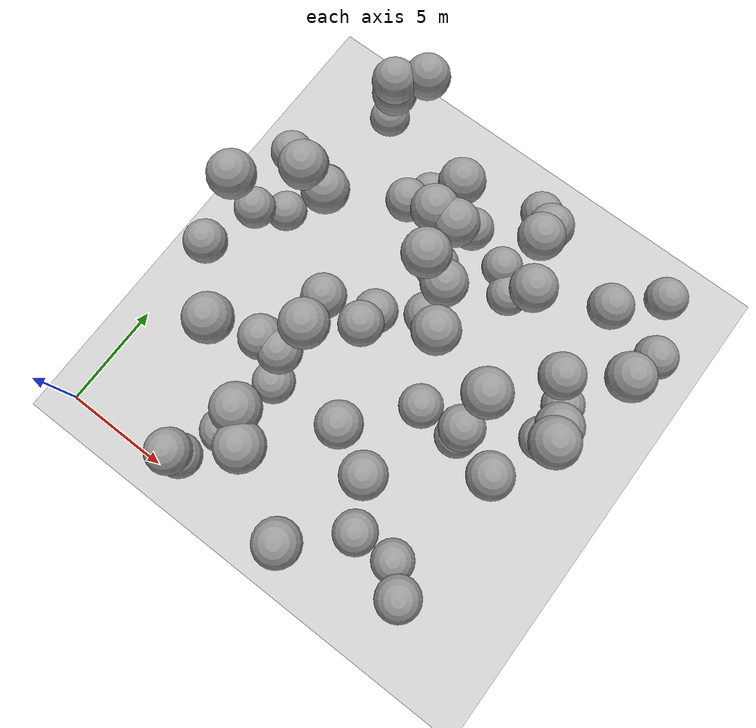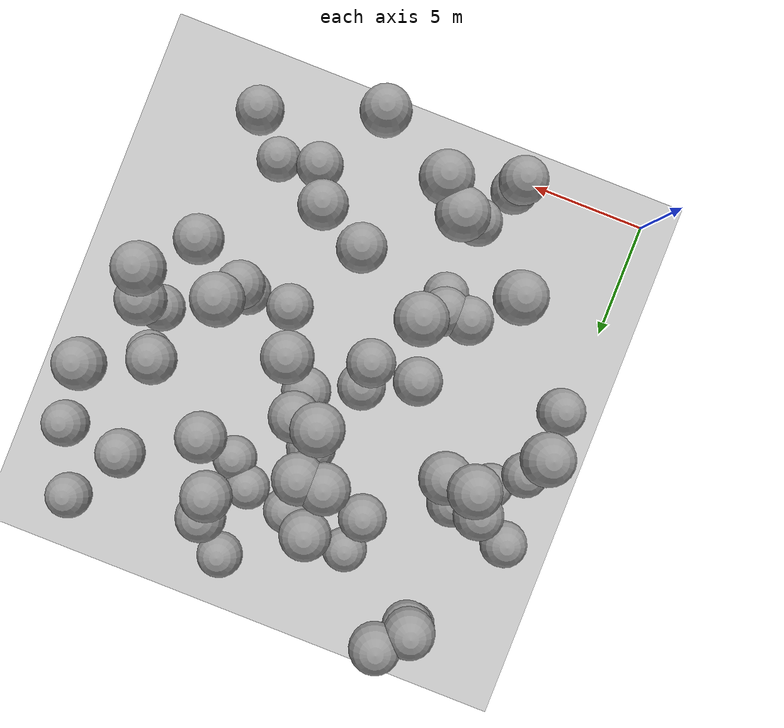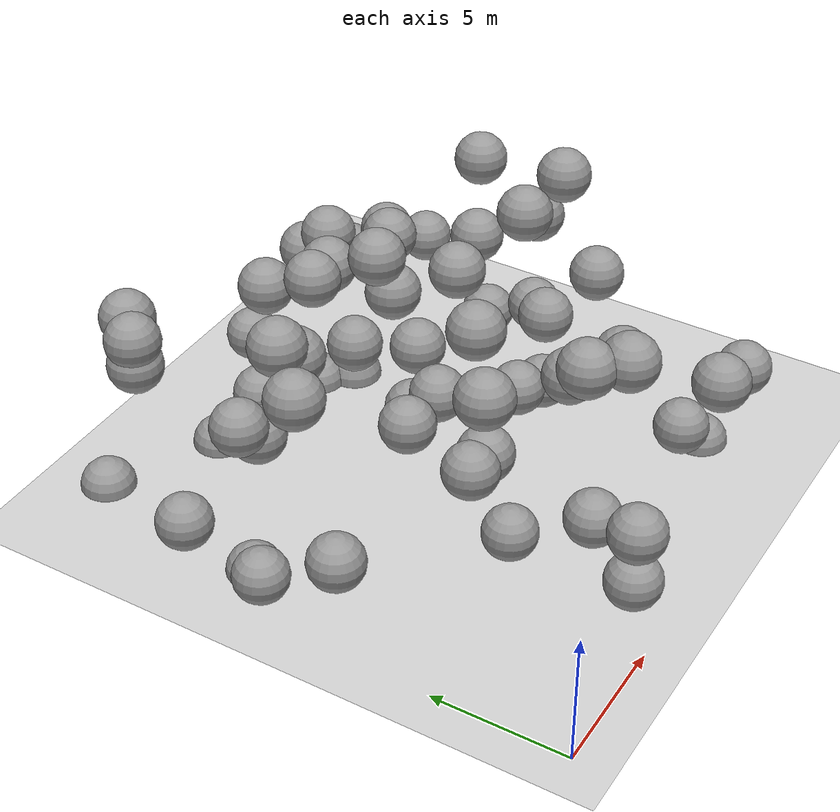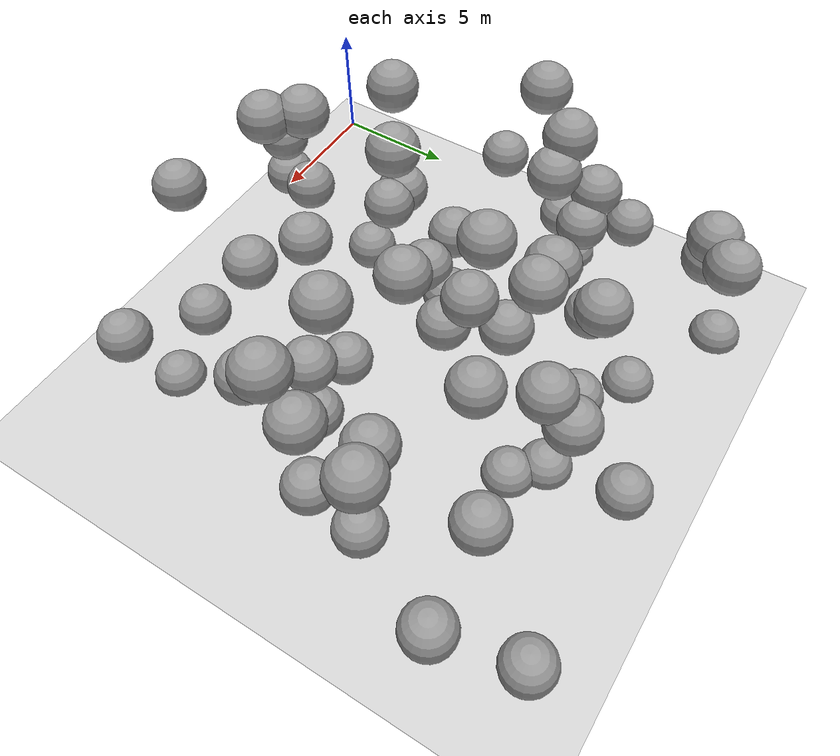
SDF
<sdf version="1.7">
 <world name="default">
  <model name="ground_plane">
   <static>1</static>
   <link name="link">
    <collision name="collision">
     <geometry><plane><normal>0 0 1</normal><size>100 100</size></plane></geometry>
     <surface>
      <contact><collide_bitmask>65535</collide_bitmask></contact>
      <friction><ode><mu>100</mu><mu2>50</mu2></ode></friction>
     </surface>
    </collision>
    <visual name="visual">
     <cast_shadows>0</cast_shadows>
     <geometry><plane><normal>0 0 1</normal><size>100 100</size></plane></geometry>
     <material>
      <script><uri>file://media/materials/scripts/gazebo.material</uri><name>Gazebo/Grey</name></script>
     </material>
    </visual>
   </link>
  </model>
  <model name="sphere_2">
   <static>1</static>
   <pose>13 16 0 0 0 0</pose>
   <link name="link">
    <inertial>
     <mass>418.87902047863906</mass>
     <inertia>
      <ixx>167.55160819145564</ixx>
      <iyy>167.55160819145564</iyy>
      <izz>167.55160819145564</izz>
      <ixy>0</ixy>
      <ixz>0</ixz>
      <iyz>0</iyz>
     </inertia>
    </inertial>
    <collision name="collision"><geometry><sphere><radius>1.0</radius></sphere></geometry></collision>
    <visual name="visual">
     <geometry><sphere><radius>1.0</radius></sphere></geometry>
     <material>
      <script><uri>file://media/materials/scripts/gazebo.material</uri><name>Gazebo/Grey</name></script>
     </material>
    </visual>
   </link>
  </model>
  <model name="sphere_6">
   <static>1</static>
   <pose>13 5 5 0 0 0</pose>
   <link name="link">
    <inertial>
     <mass>418.87902047863906</mass>
     <inertia>
      <ixx>167.55160819145564</ixx>
      <iyy>167.55160819145564</iyy>
      <izz>167.55160819145564</izz>
      <ixy>0</ixy>
      <ixz>0</ixz>
      <iyz>0</iyz>
     </inertia>
    </inertial>
    <collision name="collision"><geometry><sphere><radius>1.0</radius></sphere></geometry></collision>
    <visual name="visual">
     <geometry><sphere><radius>1.0</radius></sphere></geometry>
     <material>
      <script><uri>file://media/materials/scripts/gazebo.material</uri><name>Gazebo/Grey</name></script>
     </material>
    </visual>
   </link>
  </model>
  <model name="sphere_11">
   <static>1</static>
   <pose>5 6 8 0 0 0</pose>
   <link name="link">
    <inertial>
     <mass>418.87902047863906</mass>
     <inertia>
      <ixx>167.55160819145564</ixx>
      <iyy>167.55160819145564</iyy>
      <izz>167.55160819145564</izz>
      <ixy>0</ixy>
      <ixz>0</ixz>
      <iyz>0</iyz>
     </inertia>
    </inertial>
    <collision name="collision"><geometry><sphere><radius>1.0</radius></sphere></geometry></collision>
    <visual name="visual">
     <geometry><sphere><radius>1.0</radius></sphere></geometry>
     <material>
      <script><uri>file://media/materials/scripts/gazebo.material</uri><name>Gazebo/Grey</name></script>
     </material>
    </visual>
   </link>
  </model>
  <model name="sphere_13">
   <static>1</static>
   <pose>1 9 3 0 0 0</pose>
   <link name="link">
    <inertial>
     <mass>418.87902047863906</mass>
     <inertia>
      <ixx>167.55160819145564</ixx>
      <iyy>167.55160819145564</iyy>
      <izz>167.55160819145564</izz>
      <ixy>0</ixy>
      <ixz>0</ixz>
      <iyz>0</iyz>
     </inertia>
    </inertial>
    <collision name="collision"><geometry><sphere><radius>1.0</radius></sphere></geometry></collision>
    <visual name="visual">
     <geometry><sphere><radius>1.0</radius></sphere></geometry>
     <material>
      <script><uri>file://media/materials/scripts/gazebo.material</uri><name>Gazebo/Grey</name></script>
     </material>
    </visual>
   </link>
  </model>
  <model name="sphere_16">
   <static>1</static>
   <pose>11 12 4 0 0 0</pose>
   <link name="link">
    <inertial>
     <mass>418.87902047863906</mass>
     <inertia>
      <ixx>167.55160819145564</ixx>
      <iyy>167.55160819145564</iyy>
      <izz>167.55160819145564</izz>
      <ixy>0</ixy>
      <ixz>0</ixz>
      <iyz>0</iyz>
     </inertia>
    </inertial>
    <collision name="collision"><geometry><sphere><radius>1.0</radius></sphere></geometry></collision>
    <visual name="visual">
     <geometry><sphere><radius>1.0</radius></sphere></geometry>
     <material>
      <script><uri>file://media/materials/scripts/gazebo.material</uri><name>Gazebo/Grey</name></script>
     </material>
    </visual>
   </link>
  </model>
  <model name="sphere_18">
   <static>1</static>
   <pose>16 3 0 0 0 0</pose>
   <link name="link">
    <inertial>
     <mass>418.87902047863906</mass>
     <inertia>
      <ixx>167.55160819145564</ixx>
      <iyy>167.55160819145564</iyy>
      <izz>167.55160819145564</izz>
      <ixy>0</ixy>
      <ixz>0</ixz>
      <iyz>0</iyz>
     </inertia>
    </inertial>
    <collision name="collision"><geometry><sphere><radius>1.0</radius></sphere></geometry></collision>
    <visual name="visual">
     <geometry><sphere><radius>1.0</radius></sphere></geometry>
     <material>
      <script><uri>file://media/materials/scripts/gazebo.material</uri><name>Gazebo/Grey</name></script>
     </material>
    </visual>
   </link>
  </model>
  <model name="sphere_30">
   <static>1</static>
   <pose>15 9 4 0 0 0</pose>
   <link name="link">
    <inertial>
     <mass>418.87902047863906</mass>
     <inertia>
      <ixx>167.55160819145564</ixx>
      <iyy>167.55160819145564</iyy>
      <izz>167.55160819145564</izz>
      <ixy>0</ixy>
      <ixz>0</ixz>
      <iyz>0</iyz>
     </inertia>
    </inertial>
    <collision name="collision"><geometry><sphere><radius>1.0</radius></sphere></geometry></collision>
    <visual name="visual">
     <geometry><sphere><radius>1.0</radius></sphere></geometry>
     <material>
      <script><uri>file://media/materials/scripts/gazebo.material</uri><name>Gazebo/Grey</name></script>
     </material>
    </visual>
   </link>
  </model>
  <model name="sphere_31">
   <static>1</static>
   <pose>8 4 8 0 0 0</pose>
   <link name="link">
    <inertial>
     <mass>418.87902047863906</mass>
     <inertia>
      <ixx>167.55160819145564</ixx>
      <iyy>167.55160819145564</iyy>
      <izz>167.55160819145564</izz>
      <ixy>0</ixy>
      <ixz>0</ixz>
      <iyz>0</iyz>
     </inertia>
    </inertial>
    <collision name="collision"><geometry><sphere><radius>1.0</radius></sphere></geometry></collision>
    <visual name="visual">
     <geometry><sphere><radius>1.0</radius></sphere></geometry>
     <material>
      <script><uri>file://media/materials/scripts/gazebo.material</uri><name>Gazebo/Grey</name></script>
     </material>
    </visual>
   </link>
  </model>
  <model name="sphere_37">
   <static>1</static>
   <pose>4 19 6 0 0 0</pose>
   <link name="link">
    <inertial>
     <mass>418.87902047863906</mass>
     <inertia>
      <ixx>167.55160819145564</ixx>
      <iyy>167.55160819145564</iyy>
      <izz>167.55160819145564</izz>
      <ixy>0</ixy>
      <ixz>0</ixz>
      <iyz>0</iyz>
     </inertia>
    </inertial>
    <collision name="collision"><geometry><sphere><radius>1.0</radius></sphere></geometry></collision>
    <visual name="visual">
     <geometry><sphere><radius>1.0</radius></sphere></geometry>
     <material>
      <script><uri>file://media/materials/scripts/gazebo.material</uri><name>Gazebo/Grey</name></script>
     </material>
    </visual>
   </link>
  </model>
  <model name="sphere_40">
   <static>1</static>
   <pose>13 18 5 0 0 0</pose>
   <link name="link">
    <inertial>
     <mass>418.87902047863906</mass>
     <inertia>
      <ixx>167.55160819145564</ixx>
      <iyy>167.55160819145564</iyy>
      <izz>167.55160819145564</izz>
      <ixy>0</ixy>
      <ixz>0</ixz>
      <iyz>0</iyz>
     </inertia>
    </inertial>
    <collision name="collision"><geometry><sphere><radius>1.0</radius></sphere></geometry></collision>
    <visual name="visual">
     <geometry><sphere><radius>1.0</radius></sphere></geometry>
     <material>
      <script><uri>file://media/materials/scripts/gazebo.material</uri><name>Gazebo/Grey</name></script>
     </material>
    </visual>
   </link>
  </model>
  <model name="sphere_49">
   <static>1</static>
   <pose>3 14 5 0 0 0</pose>
   <link name="link">
    <inertial>
     <mass>418.87902047863906</mass>
     <inertia>
      <ixx>167.55160819145564</ixx>
      <iyy>167.55160819145564</iyy>
      <izz>167.55160819145564</izz>
      <ixy>0</ixy>
      <ixz>0</ixz>
      <iyz>0</iyz>
     </inertia>
    </inertial>
    <collision name="collision"><geometry><sphere><radius>1.0</radius></sphere></geometry></collision>
    <visual name="visual">
     <geometry><sphere><radius>1.0</radius></sphere></geometry>
     <material>
      <script><uri>file://media/materials/scripts/gazebo.material</uri><name>Gazebo/Grey</name></script>
     </material>
    </visual>
   </link>
  </model>
  <model name="sphere_68">
   <static>1</static>
   <pose>18 13 1 0 0 0</pose>
   <link name="link">
    <inertial>
     <mass>418.87902047863906</mass>
     <inertia>
      <ixx>167.55160819145564</ixx>
      <iyy>167.55160819145564</iyy>
      <izz>167.55160819145564</izz>
      <ixy>0</ixy>
      <ixz>0</ixz>
      <iyz>0</iyz>
     </inertia>
    </inertial>
    <collision name="collision"><geometry><sphere><radius>1.0</radius></sphere></geometry></collision>
    <visual name="visual">
     <geometry><sphere><radius>1.0</radius></sphere></geometry>
     <material>
      <script><uri>file://media/materials/scripts/gazebo.material</uri><name>Gazebo/Grey</name></script>
     </material>
    </visual>
   </link>
  </model>
  <model name="sphere_74">
   <static>1</static>
   <pose>14 3 2 0 0 0</pose>
   <link name="link">
    <inertial>
     <mass>418.87902047863906</mass>
     <inertia>
      <ixx>167.55160819145564</ixx>
      <iyy>167.55160819145564</iyy>
      <izz>167.55160819145564</izz>
      <ixy>0</ixy>
      <ixz>0</ixz>
      <iyz>0</iyz>
     </inertia>
    </inertial>
    <collision name="collision"><geometry><sphere><radius>1.0</radius></sphere></geometry></collision>
    <visual name="visual">
     <geometry><sphere><radius>1.0</radius></sphere></geometry>
     <material>
      <script><uri>file://media/materials/scripts/gazebo.material</uri><name>Gazebo/Grey</name></script>
     </material>
    </visual>
   </link>
  </model>
  <model name="sphere_80">
   <static>1</static>
   <pose>4 19 5 0 0 0</pose>
   <link name="link">
    <inertial>
     <mass>418.87902047863906</mass>
     <inertia>
      <ixx>167.55160819145564</ixx>
      <iyy>167.55160819145564</iyy>
      <izz>167.55160819145564</izz>
      <ixy>0</ixy>
      <ixz>0</ixz>
      <iyz>0</iyz>
     </inertia>
    </inertial>
    <collision name="collision"><geometry><sphere><radius>1.0</radius></sphere></geometry></collision>
    <visual name="visual">
     <geometry><sphere><radius>1.0</radius></sphere></geometry>
     <material>
      <script><uri>file://media/materials/scripts/gazebo.material</uri><name>Gazebo/Grey</name></script>
     </material>
    </visual>
   </link>
  </model>
  <model name="sphere_82">
   <static>1</static>
   <pose>19 14 7 0 0 0</pose>
   <link name="link">
    <inertial>
     <mass>418.87902047863906</mass>
     <inertia>
      <ixx>167.55160819145564</ixx>
      <iyy>167.55160819145564</iyy>
      <izz>167.55160819145564</izz>
      <ixy>0</ixy>
      <ixz>0</ixz>
      <iyz>0</iyz>
     </inertia>
    </inertial>
    <collision name="collision"><geometry><sphere><radius>1.0</radius></sphere></geometry></collision>
    <visual name="visual">
     <geometry><sphere><radius>1.0</radius></sphere></geometry>
     <material>
      <script><uri>file://media/materials/scripts/gazebo.material</uri><name>Gazebo/Grey</name></script>
     </material>
    </visual>
   </link>
  </model>
  <model name="sphere_86">
   <static>1</static>
   <pose>6 1 2 0 0 0</pose>
   <link name="link">
    <inertial>
     <mass>418.87902047863906</mass>
     <inertia>
      <ixx>167.55160819145564</ixx>
      <iyy>167.55160819145564</iyy>
      <izz>167.55160819145564</izz>
      <ixy>0</ixy>
      <ixz>0</ixz>
      <iyz>0</iyz>
     </inertia>
    </inertial>
    <collision name="collision"><geometry><sphere><radius>1.0</radius></sphere></geometry></collision>
    <visual name="visual">
     <geometry><sphere><radius>1.0</radius></sphere></geometry>
     <material>
      <script><uri>file://media/materials/scripts/gazebo.material</uri><name>Gazebo/Grey</name></script>
     </material>
    </visual>
   </link>
  </model>
  <model name="sphere_87">
   <static>1</static>
   <pose>20 17 2 0 0 0</pose>
   <link name="link">
    <inertial>
     <mass>418.87902047863906</mass>
     <inertia>
      <ixx>167.55160819145564</ixx>
      <iyy>167.55160819145564</iyy>
      <izz>167.55160819145564</izz>
      <ixy>0</ixy>
      <ixz>0</ixz>
      <iyz>0</iyz>
     </inertia>
    </inertial>
    <collision name="collision"><geometry><sphere><radius>1.0</radius></sphere></geometry></collision>
    <visual name="visual">
     <geometry><sphere><radius>1.0</radius></sphere></geometry>
     <material>
      <script><uri>file://media/materials/scripts/gazebo.material</uri><name>Gazebo/Grey</name></script>
     </material>
    </visual>
   </link>
  </model>
  <model name="sphere_90">
   <static>1</static>
   <pose>17 17 4 0 0 0</pose>
   <link name="link">
    <inertial>
     <mass>418.87902047863906</mass>
     <inertia>
      <ixx>167.55160819145564</ixx>
      <iyy>167.55160819145564</iyy>
      <izz>167.55160819145564</izz>
      <ixy>0</ixy>
      <ixz>0</ixz>
      <iyz>0</iyz>
     </inertia>
    </inertial>
    <collision name="collision"><geometry><sphere><radius>1.0</radius></sphere></geometry></collision>
    <visual name="visual">
     <geometry><sphere><radius>1.0</radius></sphere></geometry>
     <material>
      <script><uri>file://media/materials/scripts/gazebo.material</uri><name>Gazebo/Grey</name></script>
     </material>
    </visual>
   </link>
  </model>
  <model name="sphere_91">
   <static>1</static>
   <pose>12 1 6 0 0 0</pose>
   <link name="link">
    <inertial>
     <mass>418.87902047863906</mass>
     <inertia>
      <ixx>167.55160819145564</ixx>
      <iyy>167.55160819145564</iyy>
      <izz>167.55160819145564</izz>
      <ixy>0</ixy>
      <ixz>0</ixz>
      <iyz>0</iyz>
     </inertia>
    </inertial>
    <collision name="collision"><geometry><sphere><radius>1.0</radius></sphere></geometry></collision>
    <visual name="visual">
     <geometry><sphere><radius>1.0</radius></sphere></geometry>
     <material>
      <script><uri>file://media/materials/scripts/gazebo.material</uri><name>Gazebo/Grey</name></script>
     </material>
    </visual>
   </link>
  </model>
  <model name="sphere_101">
   <static>1</static>
   <pose>9 17 6 0 0 0</pose>
   <link name="link">
    <inertial>
     <mass>418.87902047863906</mass>
     <inertia>
      <ixx>167.55160819145564</ixx>
      <iyy>167.55160819145564</iyy>
      <izz>167.55160819145564</izz>
      <ixy>0</ixy>
      <ixz>0</ixz>
      <iyz>0</iyz>
     </inertia>
    </inertial>
    <collision name="collision"><geometry><sphere><radius>1.0</radius></sphere></geometry></collision>
    <visual name="visual">
     <geometry><sphere><radius>1.0</radius></sphere></geometry>
     <material>
      <script><uri>file://media/materials/scripts/gazebo.material</uri><name>Gazebo/Grey</name></script>
     </material>
    </visual>
   </link>
  </model>
  <model name="sphere_102">
   <static>1</static>
   <pose>12 20 1 0 0 0</pose>
   <link name="link">
    <inertial>
     <mass>418.87902047863906</mass>
     <inertia>
      <ixx>167.55160819145564</ixx>
      <iyy>167.55160819145564</iyy>
      <izz>167.55160819145564</izz>
      <ixy>0</ixy>
      <ixz>0</ixz>
      <iyz>0</iyz>
     </inertia>
    </inertial>
    <collision name="collision"><geometry><sphere><radius>1.0</radius></sphere></geometry></collision>
    <visual name="visual">
     <geometry><sphere><radius>1.0</radius></sphere></geometry>
     <material>
      <script><uri>file://media/materials/scripts/gazebo.material</uri><name>Gazebo/Grey</name></script>
     </material>
    </visual>
   </link>
  </model>
  <model name="sphere_105">
   <static>1</static>
   <pose>5 13 7 0 0 0</pose>
   <link name="link">
    <inertial>
     <mass>418.87902047863906</mass>
     <inertia>
      <ixx>167.55160819145564</ixx>
      <iyy>167.55160819145564</iyy>
      <izz>167.55160819145564</izz>
      <ixy>0</ixy>
      <ixz>0</ixz>
      <iyz>0</iyz>
     </inertia>
    </inertial>
    <collision name="collision"><geometry><sphere><radius>1.0</radius></sphere></geometry></collision>
    <visual name="visual">
     <geometry><sphere><radius>1.0</radius></sphere></geometry>
     <material>
      <script><uri>file://media/materials/scripts/gazebo.material</uri><name>Gazebo/Grey</name></script>
     </material>
    </visual>
   </link>
  </model>
  <model name="sphere_108">
   <static>1</static>
   <pose>7 10 4 0 0 0</pose>
   <link name="link">
    <inertial>
     <mass>418.87902047863906</mass>
     <inertia>
      <ixx>167.55160819145564</ixx>
      <iyy>167.55160819145564</iyy>
      <izz>167.55160819145564</izz>
      <ixy>0</ixy>
      <ixz>0</ixz>
      <iyz>0</iyz>
     </inertia>
    </inertial>
    <collision name="collision"><geometry><sphere><radius>1.0</radius></sphere></geometry></collision>
    <visual name="visual">
     <geometry><sphere><radius>1.0</radius></sphere></geometry>
     <material>
      <script><uri>file://media/materials/scripts/gazebo.material</uri><name>Gazebo/Grey</name></script>
     </material>
    </visual>
   </link>
  </model>
  <model name="sphere_109">
   <static>1</static>
   <pose>17 13 5 0 0 0</pose>
   <link name="link">
    <inertial>
     <mass>418.87902047863906</mass>
     <inertia>
      <ixx>167.55160819145564</ixx>
      <iyy>167.55160819145564</iyy>
      <izz>167.55160819145564</izz>
      <ixy>0</ixy>
      <ixz>0</ixz>
      <iyz>0</iyz>
     </inertia>
    </inertial>
    <collision name="collision"><geometry><sphere><radius>1.0</radius></sphere></geometry></collision>
    <visual name="visual">
     <geometry><sphere><radius>1.0</radius></sphere></geometry>
     <material>
      <script><uri>file://media/materials/scripts/gazebo.material</uri><name>Gazebo/Grey</name></script>
     </material>
    </visual>
   </link>
  </model>
  <model name="sphere_110">
   <static>1</static>
   <pose>4 13 8 0 0 0</pose>
   <link name="link">
    <inertial>
     <mass>418.87902047863906</mass>
     <inertia>
      <ixx>167.55160819145564</ixx>
      <iyy>167.55160819145564</iyy>
      <izz>167.55160819145564</izz>
      <ixy>0</ixy>
      <ixz>0</ixz>
      <iyz>0</iyz>
     </inertia>
    </inertial>
    <collision name="collision"><geometry><sphere><radius>1.0</radius></sphere></geometry></collision>
    <visual name="visual">
     <geometry><sphere><radius>1.0</radius></sphere></geometry>
     <material>
      <script><uri>file://media/materials/scripts/gazebo.material</uri><name>Gazebo/Grey</name></script>
     </material>
    </visual>
   </link>
  </model>
  <model name="sphere_117">
   <static>1</static>
   <pose>10 17 2 0 0 0</pose>
   <link name="link">
    <inertial>
     <mass>418.87902047863906</mass>
     <inertia>
      <ixx>167.55160819145564</ixx>
      <iyy>167.55160819145564</iyy>
      <izz>167.55160819145564</izz>
      <ixy>0</ixy>
      <ixz>0</ixz>
      <iyz>0</iyz>
     </inertia>
    </inertial>
    <collision name="collision"><geometry><sphere><radius>1.0</radius></sphere></geometry></collision>
    <visual name="visual">
     <geometry><sphere><radius>1.0</radius></sphere></geometry>
     <material>
      <script><uri>file://media/materials/scripts/gazebo.material</uri><name>Gazebo/Grey</name></script>
     </material>
    </visual>
   </link>
  </model>
  <model name="sphere_120">
   <static>1</static>
   <pose>1 12 1 0 0 0</pose>
   <link name="link">
    <inertial>
     <mass>418.87902047863906</mass>
     <inertia>
      <ixx>167.55160819145564</ixx>
      <iyy>167.55160819145564</iyy>
      <izz>167.55160819145564</izz>
      <ixy>0</ixy>
      <ixz>0</ixz>
      <iyz>0</iyz>
     </inertia>
    </inertial>
    <collision name="collision"><geometry><sphere><radius>1.0</radius></sphere></geometry></collision>
    <visual name="visual">
     <geometry><sphere><radius>1.0</radius></sphere></geometry>
     <material>
      <script><uri>file://media/materials/scripts/gazebo.material</uri><name>Gazebo/Grey</name></script>
     </material>
    </visual>
   </link>
  </model>
  <model name="sphere_122">
   <static>1</static>
   <pose>13 17 6 0 0 0</pose>
   <link name="link">
    <inertial>
     <mass>418.87902047863906</mass>
     <inertia>
      <ixx>167.55160819145564</ixx>
      <iyy>167.55160819145564</iyy>
      <izz>167.55160819145564</izz>
      <ixy>0</ixy>
      <ixz>0</ixz>
      <iyz>0</iyz>
     </inertia>
    </inertial>
    <collision name="collision"><geometry><sphere><radius>1.0</radius></sphere></geometry></collision>
    <visual name="visual">
     <geometry><sphere><radius>1.0</radius></sphere></geometry>
     <material>
      <script><uri>file://media/materials/scripts/gazebo.material</uri><name>Gazebo/Grey</name></script>
     </material>
    </visual>
   </link>
  </model>
  <model name="sphere_124">
   <static>1</static>
   <pose>5 20 6 0 0 0</pose>
   <link name="link">
    <inertial>
     <mass>418.87902047863906</mass>
     <inertia>
      <ixx>167.55160819145564</ixx>
      <iyy>167.55160819145564</iyy>
      <izz>167.55160819145564</izz>
      <ixy>0</ixy>
      <ixz>0</ixz>
      <iyz>0</iyz>
     </inertia>
    </inertial>
    <collision name="collision"><geometry><sphere><radius>1.0</radius></sphere></geometry></collision>
    <visual name="visual">
     <geometry><sphere><radius>1.0</radius></sphere></geometry>
     <material>
      <script><uri>file://media/materials/scripts/gazebo.material</uri><name>Gazebo/Grey</name></script>
     </material>
    </visual>
   </link>
  </model>
  <model name="sphere_126">
   <static>1</static>
   <pose>18 10 8 0 0 0</pose>
   <link name="link">
    <inertial>
     <mass>418.87902047863906</mass>
     <inertia>
      <ixx>167.55160819145564</ixx>
      <iyy>167.55160819145564</iyy>
      <izz>167.55160819145564</izz>
      <ixy>0</ixy>
      <ixz>0</ixz>
      <iyz>0</iyz>
     </inertia>
    </inertial>
    <collision name="collision"><geometry><sphere><radius>1.0</radius></sphere></geometry></collision>
    <visual name="visual">
     <geometry><sphere><radius>1.0</radius></sphere></geometry>
     <material>
      <script><uri>file://media/materials/scripts/gazebo.material</uri><name>Gazebo/Grey</name></script>
     </material>
    </visual>
   </link>
  </model>
  <model name="sphere_130">
   <static>1</static>
   <pose>7 18 0 0 0 0</pose>
   <link name="link">
    <inertial>
     <mass>418.87902047863906</mass>
     <inertia>
      <ixx>167.55160819145564</ixx>
      <iyy>167.55160819145564</iyy>
      <izz>167.55160819145564</izz>
      <ixy>0</ixy>
      <ixz>0</ixz>
      <iyz>0</iyz>
     </inertia>
    </inertial>
    <collision name="collision"><geometry><sphere><radius>1.0</radius></sphere></geometry></collision>
    <visual name="visual">
     <geometry><sphere><radius>1.0</radius></sphere></geometry>
     <material>
      <script><uri>file://media/materials/scripts/gazebo.material</uri><name>Gazebo/Grey</name></script>
     </material>
    </visual>
   </link>
  </model>
  <model name="sphere_138">
   <static>1</static>
   <pose>9 11 3 0 0 0</pose>
   <link name="link">
    <inertial>
     <mass>418.87902047863906</mass>
     <inertia>
      <ixx>167.55160819145564</ixx>
      <iyy>167.55160819145564</iyy>
      <izz>167.55160819145564</izz>
      <ixy>0</ixy>
      <ixz>0</ixz>
      <iyz>0</iyz>
     </inertia>
    </inertial>
    <collision name="collision"><geometry><sphere><radius>1.0</radius></sphere></geometry></collision>
    <visual name="visual">
     <geometry><sphere><radius>1.0</radius></sphere></geometry>
     <material>
      <script><uri>file://media/materials/scripts/gazebo.material</uri><name>Gazebo/Grey</name></script>
     </material>
    </visual>
   </link>
  </model>
  <model name="sphere_147">
   <static>1</static>
   <pose>10 15 7 0 0 0</pose>
   <link name="link">
    <inertial>
     <mass>418.87902047863906</mass>
     <inertia>
      <ixx>167.55160819145564</ixx>
      <iyy>167.55160819145564</iyy>
      <izz>167.55160819145564</izz>
      <ixy>0</ixy>
      <ixz>0</ixz>
      <iyz>0</iyz>
     </inertia>
    </inertial>
    <collision name="collision"><geometry><sphere><radius>1.0</radius></sphere></geometry></collision>
    <visual name="visual">
     <geometry><sphere><radius>1.0</radius></sphere></geometry>
     <material>
      <script><uri>file://media/materials/scripts/gazebo.material</uri><name>Gazebo/Grey</name></script>
     </material>
    </visual>
   </link>
  </model>
  <model name="sphere_149">
   <static>1</static>
   <pose>10 13 8 0 0 0</pose>
   <link name="link">
    <inertial>
     <mass>418.87902047863906</mass>
     <inertia>
      <ixx>167.55160819145564</ixx>
      <iyy>167.55160819145564</iyy>
      <izz>167.55160819145564</izz>
      <ixy>0</ixy>
      <ixz>0</ixz>
      <iyz>0</iyz>
     </inertia>
    </inertial>
    <collision name="collision"><geometry><sphere><radius>1.0</radius></sphere></geometry></collision>
    <visual name="visual">
     <geometry><sphere><radius>1.0</radius></sphere></geometry>
     <material>
      <script><uri>file://media/materials/scripts/gazebo.material</uri><name>Gazebo/Grey</name></script>
     </material>
    </visual>
   </link>
  </model>
  <model name="sphere_151">
   <static>1</static>
   <pose>17 8 5 0 0 0</pose>
   <link name="link">
    <inertial>
     <mass>418.87902047863906</mass>
     <inertia>
      <ixx>167.55160819145564</ixx>
      <iyy>167.55160819145564</iyy>
      <izz>167.55160819145564</izz>
      <ixy>0</ixy>
      <ixz>0</ixz>
      <iyz>0</iyz>
     </inertia>
    </inertial>
    <collision name="collision"><geometry><sphere><radius>1.0</radius></sphere></geometry></collision>
    <visual name="visual">
     <geometry><sphere><radius>1.0</radius></sphere></geometry>
     <material>
      <script><uri>file://media/materials/scripts/gazebo.material</uri><name>Gazebo/Grey</name></script>
     </material>
    </visual>
   </link>
  </model>
  <model name="sphere_153">
   <static>1</static>
   <pose>2 13 0 0 0 0</pose>
   <link name="link">
    <inertial>
     <mass>418.87902047863906</mass>
     <inertia>
      <ixx>167.55160819145564</ixx>
      <iyy>167.55160819145564</iyy>
      <izz>167.55160819145564</izz>
      <ixy>0</ixy>
      <ixz>0</ixz>
      <iyz>0</iyz>
     </inertia>
    </inertial>
    <collision name="collision"><geometry><sphere><radius>1.0</radius></sphere></geometry></collision>
    <visual name="visual">
     <geometry><sphere><radius>1.0</radius></sphere></geometry>
     <material>
      <script><uri>file://media/materials/scripts/gazebo.material</uri><name>Gazebo/Grey</name></script>
     </material>
    </visual>
   </link>
  </model>
  <model name="sphere_154">
   <static>1</static>
   <pose>10 14 4 0 0 0</pose>
   <link name="link">
    <inertial>
     <mass>418.87902047863906</mass>
     <inertia>
      <ixx>167.55160819145564</ixx>
      <iyy>167.55160819145564</iyy>
      <izz>167.55160819145564</izz>
      <ixy>0</ixy>
      <ixz>0</ixz>
      <iyz>0</iyz>
     </inertia>
    </inertial>
    <collision name="collision"><geometry><sphere><radius>1.0</radius></sphere></geometry></collision>
    <visual name="visual">
     <geometry><sphere><radius>1.0</radius></sphere></geometry>
     <material>
      <script><uri>file://media/materials/scripts/gazebo.material</uri><name>Gazebo/Grey</name></script>
     </material>
    </visual>
   </link>
  </model>
  <model name="sphere_156">
   <static>1</static>
   <pose>1 15 2 0 0 0</pose>
   <link name="link">
    <inertial>
     <mass>418.87902047863906</mass>
     <inertia>
      <ixx>167.55160819145564</ixx>
      <iyy>167.55160819145564</iyy>
      <izz>167.55160819145564</izz>
      <ixy>0</ixy>
      <ixz>0</ixz>
      <iyz>0</iyz>
     </inertia>
    </inertial>
    <collision name="collision"><geometry><sphere><radius>1.0</radius></sphere></geometry></collision>
    <visual name="visual">
     <geometry><sphere><radius>1.0</radius></sphere></geometry>
     <material>
      <script><uri>file://media/materials/scripts/gazebo.material</uri><name>Gazebo/Grey</name></script>
     </material>
    </visual>
   </link>
  </model>
  <model name="sphere_161">
   <static>1</static>
   <pose>14 15 6 0 0 0</pose>
   <link name="link">
    <inertial>
     <mass>418.87902047863906</mass>
     <inertia>
      <ixx>167.55160819145564</ixx>
      <iyy>167.55160819145564</iyy>
      <izz>167.55160819145564</izz>
      <ixy>0</ixy>
      <ixz>0</ixz>
      <iyz>0</iyz>
     </inertia>
    </inertial>
    <collision name="collision"><geometry><sphere><radius>1.0</radius></sphere></geometry></collision>
    <visual name="visual">
     <geometry><sphere><radius>1.0</radius></sphere></geometry>
     <material>
      <script><uri>file://media/materials/scripts/gazebo.material</uri><name>Gazebo/Grey</name></script>
     </material>
    </visual>
   </link>
  </model>
  <model name="sphere_162">
   <static>1</static>
   <pose>9 10 4 0 0 0</pose>
   <link name="link">
    <inertial>
     <mass>418.87902047863906</mass>
     <inertia>
      <ixx>167.55160819145564</ixx>
      <iyy>167.55160819145564</iyy>
      <izz>167.55160819145564</izz>
      <ixy>0</ixy>
      <ixz>0</ixz>
      <iyz>0</iyz>
     </inertia>
    </inertial>
    <collision name="collision"><geometry><sphere><radius>1.0</radius></sphere></geometry></collision>
    <visual name="visual">
     <geometry><sphere><radius>1.0</radius></sphere></geometry>
     <material>
      <script><uri>file://media/materials/scripts/gazebo.material</uri><name>Gazebo/Grey</name></script>
     </material>
    </visual>
   </link>
  </model>
  <model name="sphere_163">
   <static>1</static>
   <pose>12 17 0 0 0 0</pose>
   <link name="link">
    <inertial>
     <mass>418.87902047863906</mass>
     <inertia>
      <ixx>167.55160819145564</ixx>
      <iyy>167.55160819145564</iyy>
      <izz>167.55160819145564</izz>
      <ixy>0</ixy>
      <ixz>0</ixz>
      <iyz>0</iyz>
     </inertia>
    </inertial>
    <collision name="collision"><geometry><sphere><radius>1.0</radius></sphere></geometry></collision>
    <visual name="visual">
     <geometry><sphere><radius>1.0</radius></sphere></geometry>
     <material>
      <script><uri>file://media/materials/scripts/gazebo.material</uri><name>Gazebo/Grey</name></script>
     </material>
    </visual>
   </link>
  </model>
  <model name="sphere_170">
   <static>1</static>
   <pose>13 9 2 0 0 0</pose>
   <link name="link">
    <inertial>
     <mass>418.87902047863906</mass>
     <inertia>
      <ixx>167.55160819145564</ixx>
      <iyy>167.55160819145564</iyy>
      <izz>167.55160819145564</izz>
      <ixy>0</ixy>
      <ixz>0</ixz>
      <iyz>0</iyz>
     </inertia>
    </inertial>
    <collision name="collision"><geometry><sphere><radius>1.0</radius></sphere></geometry></collision>
    <visual name="visual">
     <geometry><sphere><radius>1.0</radius></sphere></geometry>
     <material>
      <script><uri>file://media/materials/scripts/gazebo.material</uri><name>Gazebo/Grey</name></script>
     </material>
    </visual>
   </link>
  </model>
  <model name="sphere_172">
   <static>1</static>
   <pose>18 11 6 0 0 0</pose>
   <link name="link">
    <inertial>
     <mass>418.87902047863906</mass>
     <inertia>
      <ixx>167.55160819145564</ixx>
      <iyy>167.55160819145564</iyy>
      <izz>167.55160819145564</izz>
      <ixy>0</ixy>
      <ixz>0</ixz>
      <iyz>0</iyz>
     </inertia>
    </inertial>
    <collision name="collision"><geometry><sphere><radius>1.0</radius></sphere></geometry></collision>
    <visual name="visual">
     <geometry><sphere><radius>1.0</radius></sphere></geometry>
     <material>
      <script><uri>file://media/materials/scripts/gazebo.material</uri><name>Gazebo/Grey</name></script>
     </material>
    </visual>
   </link>
  </model>
  <model name="sphere_174">
   <static>1</static>
   <pose>18 11 2 0 0 0</pose>
   <link name="link">
    <inertial>
     <mass>418.87902047863906</mass>
     <inertia>
      <ixx>167.55160819145564</ixx>
      <iyy>167.55160819145564</iyy>
      <izz>167.55160819145564</izz>
      <ixy>0</ixy>
      <ixz>0</ixz>
      <iyz>0</iyz>
     </inertia>
    </inertial>
    <collision name="collision"><geometry><sphere><radius>1.0</radius></sphere></geometry></collision>
    <visual name="visual">
     <geometry><sphere><radius>1.0</radius></sphere></geometry>
     <material>
      <script><uri>file://media/materials/scripts/gazebo.material</uri><name>Gazebo/Grey</name></script>
     </material>
    </visual>
   </link>
  </model>
  <model name="sphere_179">
   <static>1</static>
   <pose>4 14 4 0 0 0</pose>
   <link name="link">
    <inertial>
     <mass>418.87902047863906</mass>
     <inertia>
      <ixx>167.55160819145564</ixx>
      <iyy>167.55160819145564</iyy>
      <izz>167.55160819145564</izz>
      <ixy>0</ixy>
      <ixz>0</ixz>
      <iyz>0</iyz>
     </inertia>
    </inertial>
    <collision name="collision"><geometry><sphere><radius>1.0</radius></sphere></geometry></collision>
    <visual name="visual">
     <geometry><sphere><radius>1.0</radius></sphere></geometry>
     <material>
      <script><uri>file://media/materials/scripts/gazebo.material</uri><name>Gazebo/Grey</name></script>
     </material>
    </visual>
   </link>
  </model>
  <model name="sphere_181">
   <static>1</static>
   <pose>2 11 8 0 0 0</pose>
   <link name="link">
    <inertial>
     <mass>418.87902047863906</mass>
     <inertia>
      <ixx>167.55160819145564</ixx>
      <iyy>167.55160819145564</iyy>
      <izz>167.55160819145564</izz>
      <ixy>0</ixy>
      <ixz>0</ixz>
      <iyz>0</iyz>
     </inertia>
    </inertial>
    <collision name="collision"><geometry><sphere><radius>1.0</radius></sphere></geometry></collision>
    <visual name="visual">
     <geometry><sphere><radius>1.0</radius></sphere></geometry>
     <material>
      <script><uri>file://media/materials/scripts/gazebo.material</uri><name>Gazebo/Grey</name></script>
     </material>
    </visual>
   </link>
  </model>
  <model name="sphere_183">
   <static>1</static>
   <pose>15 9 1 0 0 0</pose>
   <link name="link">
    <inertial>
     <mass>418.87902047863906</mass>
     <inertia>
      <ixx>167.55160819145564</ixx>
      <iyy>167.55160819145564</iyy>
      <izz>167.55160819145564</izz>
      <ixy>0</ixy>
      <ixz>0</ixz>
      <iyz>0</iyz>
     </inertia>
    </inertial>
    <collision name="collision"><geometry><sphere><radius>1.0</radius></sphere></geometry></collision>
    <visual name="visual">
     <geometry><sphere><radius>1.0</radius></sphere></geometry>
     <material>
      <script><uri>file://media/materials/scripts/gazebo.material</uri><name>Gazebo/Grey</name></script>
     </material>
    </visual>
   </link>
  </model>
  <model name="sphere_186">
   <static>1</static>
   <pose>15 10 8 0 0 0</pose>
   <link name="link">
    <inertial>
     <mass>418.87902047863906</mass>
     <inertia>
      <ixx>167.55160819145564</ixx>
      <iyy>167.55160819145564</iyy>
      <izz>167.55160819145564</izz>
      <ixy>0</ixy>
      <ixz>0</ixz>
      <iyz>0</iyz>
     </inertia>
    </inertial>
    <collision name="collision"><geometry><sphere><radius>1.0</radius></sphere></geometry></collision>
    <visual name="visual">
     <geometry><sphere><radius>1.0</radius></sphere></geometry>
     <material>
      <script><uri>file://media/materials/scripts/gazebo.material</uri><name>Gazebo/Grey</name></script>
     </material>
    </visual>
   </link>
  </model>
  <model name="sphere_188">
   <static>1</static>
   <pose>19 20 1 0 0 0</pose>
   <link name="link">
    <inertial>
     <mass>418.87902047863906</mass>
     <inertia>
      <ixx>167.55160819145564</ixx>
      <iyy>167.55160819145564</iyy>
      <izz>167.55160819145564</izz>
      <ixy>0</ixy>
      <ixz>0</ixz>
      <iyz>0</iyz>
     </inertia>
    </inertial>
    <collision name="collision"><geometry><sphere><radius>1.0</radius></sphere></geometry></collision>
    <visual name="visual">
     <geometry><sphere><radius>1.0</radius></sphere></geometry>
     <material>
      <script><uri>file://media/materials/scripts/gazebo.material</uri><name>Gazebo/Grey</name></script>
     </material>
    </visual>
   </link>
  </model>
  <model name="sphere_190">
   <static>1</static>
   <pose>11 13 6 0 0 0</pose>
   <link name="link">
    <inertial>
     <mass>418.87902047863906</mass>
     <inertia>
      <ixx>167.55160819145564</ixx>
      <iyy>167.55160819145564</iyy>
      <izz>167.55160819145564</izz>
      <ixy>0</ixy>
      <ixz>0</ixz>
      <iyz>0</iyz>
     </inertia>
    </inertial>
    <collision name="collision"><geometry><sphere><radius>1.0</radius></sphere></geometry></collision>
    <visual name="visual">
     <geometry><sphere><radius>1.0</radius></sphere></geometry>
     <material>
      <script><uri>file://media/materials/scripts/gazebo.material</uri><name>Gazebo/Grey</name></script>
     </material>
    </visual>
   </link>
  </model>
  <model name="sphere_192">
   <static>1</static>
   <pose>6 7 4 0 0 0</pose>
   <link name="link">
    <inertial>
     <mass>418.87902047863906</mass>
     <inertia>
      <ixx>167.55160819145564</ixx>
      <iyy>167.55160819145564</iyy>
      <izz>167.55160819145564</izz>
      <ixy>0</ixy>
      <ixz>0</ixz>
      <iyz>0</iyz>
     </inertia>
    </inertial>
    <collision name="collision"><geometry><sphere><radius>1.0</radius></sphere></geometry></collision>
    <visual name="visual">
     <geometry><sphere><radius>1.0</radius></sphere></geometry>
     <material>
      <script><uri>file://media/materials/scripts/gazebo.material</uri><name>Gazebo/Grey</name></script>
     </material>
    </visual>
   </link>
  </model>
  <model name="sphere_195">
   <static>1</static>
   <pose>9 15 7 0 0 0</pose>
   <link name="link">
    <inertial>
     <mass>418.87902047863906</mass>
     <inertia>
      <ixx>167.55160819145564</ixx>
      <iyy>167.55160819145564</iyy>
      <izz>167.55160819145564</izz>
      <ixy>0</ixy>
      <ixz>0</ixz>
      <iyz>0</iyz>
     </inertia>
    </inertial>
    <collision name="collision"><geometry><sphere><radius>1.0</radius></sphere></geometry></collision>
    <visual name="visual">
     <geometry><sphere><radius>1.0</radius></sphere></geometry>
     <material>
      <script><uri>file://media/materials/scripts/gazebo.material</uri><name>Gazebo/Grey</name></script>
     </material>
    </visual>
   </link>
  </model>
  <model name="sphere_196">
   <static>1</static>
   <pose>7 6 1 0 0 0</pose>
   <link name="link">
    <inertial>
     <mass>418.87902047863906</mass>
     <inertia>
      <ixx>167.55160819145564</ixx>
      <iyy>167.55160819145564</iyy>
      <izz>167.55160819145564</izz>
      <ixy>0</ixy>
      <ixz>0</ixz>
      <iyz>0</iyz>
     </inertia>
    </inertial>
    <collision name="collision"><geometry><sphere><radius>1.0</radius></sphere></geometry></collision>
    <visual name="visual">
     <geometry><sphere><radius>1.0</radius></sphere></geometry>
     <material>
      <script><uri>file://media/materials/scripts/gazebo.material</uri><name>Gazebo/Grey</name></script>
     </material>
    </visual>
   </link>
  </model>
  <model name="sphere_208">
   <static>1</static>
   <pose>3 20 0 0 0 0</pose>
   <link name="link">
    <inertial>
     <mass>418.87902047863906</mass>
     <inertia>
      <ixx>167.55160819145564</ixx>
      <iyy>167.55160819145564</iyy>
      <izz>167.55160819145564</izz>
      <ixy>0</ixy>
      <ixz>0</ixz>
      <iyz>0</iyz>
     </inertia>
    </inertial>
    <collision name="collision"><geometry><sphere><radius>1.0</radius></sphere></geometry></collision>
    <visual name="visual">
     <geometry><sphere><radius>1.0</radius></sphere></geometry>
     <material>
      <script><uri>file://media/materials/scripts/gazebo.material</uri><name>Gazebo/Grey</name></script>
     </material>
    </visual>
   </link>
  </model>
  <model name="sphere_212">
   <static>1</static>
   <pose>6 1 4 0 0 0</pose>
   <link name="link">
    <inertial>
     <mass>418.87902047863906</mass>
     <inertia>
      <ixx>167.55160819145564</ixx>
      <iyy>167.55160819145564</iyy>
      <izz>167.55160819145564</izz>
      <ixy>0</ixy>
      <ixz>0</ixz>
      <iyz>0</iyz>
     </inertia>
    </inertial>
    <collision name="collision"><geometry><sphere><radius>1.0</radius></sphere></geometry></collision>
    <visual name="visual">
     <geometry><sphere><radius>1.0</radius></sphere></geometry>
     <material>
      <script><uri>file://media/materials/scripts/gazebo.material</uri><name>Gazebo/Grey</name></script>
     </material>
    </visual>
   </link>
  </model>
  <model name="sphere_213">
   <static>1</static>
   <pose>8 8 8 0 0 0</pose>
   <link name="link">
    <inertial>
     <mass>418.87902047863906</mass>
     <inertia>
      <ixx>167.55160819145564</ixx>
      <iyy>167.55160819145564</iyy>
      <izz>167.55160819145564</izz>
      <ixy>0</ixy>
      <ixz>0</ixz>
      <iyz>0</iyz>
     </inertia>
    </inertial>
    <collision name="collision"><geometry><sphere><radius>1.0</radius></sphere></geometry></collision>
    <visual name="visual">
     <geometry><sphere><radius>1.0</radius></sphere></geometry>
     <material>
      <script><uri>file://media/materials/scripts/gazebo.material</uri><name>Gazebo/Grey</name></script>
     </material>
    </visual>
   </link>
  </model>
  <model name="sphere_215">
   <static>1</static>
   <pose>11 6 5 0 0 0</pose>
   <link name="link">
    <inertial>
     <mass>418.87902047863906</mass>
     <inertia>
      <ixx>167.55160819145564</ixx>
      <iyy>167.55160819145564</iyy>
      <izz>167.55160819145564</izz>
      <ixy>0</ixy>
      <ixz>0</ixz>
      <iyz>0</iyz>
     </inertia>
    </inertial>
    <collision name="collision"><geometry><sphere><radius>1.0</radius></sphere></geometry></collision>
    <visual name="visual">
     <geometry><sphere><radius>1.0</radius></sphere></geometry>
     <material>
      <script><uri>file://media/materials/scripts/gazebo.material</uri><name>Gazebo/Grey</name></script>
     </material>
    </visual>
   </link>
  </model>
  <model name="sphere_226">
   <static>1</static>
   <pose>7 16 3 0 0 0</pose>
   <link name="link">
    <inertial>
     <mass>418.87902047863906</mass>
     <inertia>
      <ixx>167.55160819145564</ixx>
      <iyy>167.55160819145564</iyy>
      <izz>167.55160819145564</izz>
      <ixy>0</ixy>
      <ixz>0</ixz>
      <iyz>0</iyz>
     </inertia>
    </inertial>
    <collision name="collision"><geometry><sphere><radius>1.0</radius></sphere></geometry></collision>
    <visual name="visual">
     <geometry><sphere><radius>1.0</radius></sphere></geometry>
     <material>
      <script><uri>file://media/materials/scripts/gazebo.material</uri><name>Gazebo/Grey</name></script>
     </material>
    </visual>
   </link>
  </model>
  <model name="sphere_228">
   <static>1</static>
   <pose>7 7 4 0 0 0</pose>
   <link name="link">
    <inertial>
     <mass>418.87902047863906</mass>
     <inertia>
      <ixx>167.55160819145564</ixx>
      <iyy>167.55160819145564</iyy>
      <izz>167.55160819145564</izz>
      <ixy>0</ixy>
      <ixz>0</ixz>
      <iyz>0</iyz>
     </inertia>
    </inertial>
    <collision name="collision"><geometry><sphere><radius>1.0</radius></sphere></geometry></collision>
    <visual name="visual">
     <geometry><sphere><radius>1.0</radius></sphere></geometry>
     <material>
      <script><uri>file://media/materials/scripts/gazebo.material</uri><name>Gazebo/Grey</name></script>
     </material>
    </visual>
   </link>
  </model>
  <model name="sphere_231">
   <static>1</static>
   <pose>7 3 3 0 0 0</pose>
   <link name="link">
    <inertial>
     <mass>418.87902047863906</mass>
     <inertia>
      <ixx>167.55160819145564</ixx>
      <iyy>167.55160819145564</iyy>
      <izz>167.55160819145564</izz>
      <ixy>0</ixy>
      <ixz>0</ixz>
      <iyz>0</iyz>
     </inertia>
    </inertial>
    <collision name="collision"><geometry><sphere><radius>1.0</radius></sphere></geometry></collision>
    <visual name="visual">
     <geometry><sphere><radius>1.0</radius></sphere></geometry>
     <material>
      <script><uri>file://media/materials/scripts/gazebo.material</uri><name>Gazebo/Grey</name></script>
     </material>
    </visual>
   </link>
  </model>
  <model name="sphere_239">
   <static>1</static>
   <pose>9 3 8 0 0 0</pose>
   <link name="link">
    <inertial>
     <mass>418.87902047863906</mass>
     <inertia>
      <ixx>167.55160819145564</ixx>
      <iyy>167.55160819145564</iyy>
      <izz>167.55160819145564</izz>
      <ixy>0</ixy>
      <ixz>0</ixz>
      <iyz>0</iyz>
     </inertia>
    </inertial>
    <collision name="collision"><geometry><sphere><radius>1.0</radius></sphere></geometry></collision>
    <visual name="visual">
     <geometry><sphere><radius>1.0</radius></sphere></geometry>
     <material>
      <script><uri>file://media/materials/scripts/gazebo.material</uri><name>Gazebo/Grey</name></script>
     </material>
    </visual>
   </link>
  </model>
  <model name="sphere_244">
   <static>1</static>
   <pose>12 11 7 0 0 0</pose>
   <link name="link">
    <inertial>
     <mass>418.87902047863906</mass>
     <inertia>
      <ixx>167.55160819145564</ixx>
      <iyy>167.55160819145564</iyy>
      <izz>167.55160819145564</izz>
      <ixy>0</ixy>
      <ixz>0</ixz>
      <iyz>0</iyz>
     </inertia>
    </inertial>
    <collision name="collision"><geometry><sphere><radius>1.0</radius></sphere></geometry></collision>
    <visual name="visual">
     <geometry><sphere><radius>1.0</radius></sphere></geometry>
     <material>
      <script><uri>file://media/materials/scripts/gazebo.material</uri><name>Gazebo/Grey</name></script>
     </material>
    </visual>
   </link>
  </model>
  <model name="sphere_250">
   <static>1</static>
   <pose>17 2 3 0 0 0</pose>
   <link name="link">
    <inertial>
     <mass>418.87902047863906</mass>
     <inertia>
      <ixx>167.55160819145564</ixx>
      <iyy>167.55160819145564</iyy>
      <izz>167.55160819145564</izz>
      <ixy>0</ixy>
      <ixz>0</ixz>
      <iyz>0</iyz>
     </inertia>
    </inertial>
    <collision name="collision"><geometry><sphere><radius>1.0</radius></sphere></geometry></collision>
    <visual name="visual">
     <geometry><sphere><radius>1.0</radius></sphere></geometry>
     <material>
      <script><uri>file://media/materials/scripts/gazebo.material</uri><name>Gazebo/Grey</name></script>
     </material>
    </visual>
   </link>
  </model>
 </world>
</sdf>
